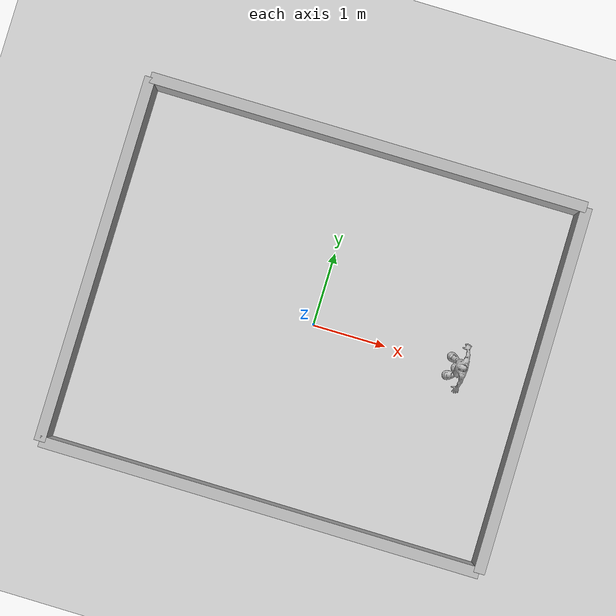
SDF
<sdf version="1.9">
 <world name="default">
  <plugin filename="gz-sim-sensors-system" name="gz::sim::systems::Sensors">
   <render_engine>ogre2</render_engine>
  </plugin>
  <plugin filename="gz-sim-physics-system" name="gz::sim::systems::Physics"/>
  <plugin filename="gz-sim-user-commands-system" name="gz::sim::systems::UserCommands"/>
  <plugin filename="gz-sim-scene-broadcaster-system" name="gz::sim::systems::SceneBroadcaster"/>
  <light name="sun" type="directional">
   <pose>0 0 10 0 0 0</pose>
   <diffuse>0.8 0.8 0.8 1</diffuse>
   <specular>0.2 0.2 0.2 1</specular>
   <direction>-0.5 0.1 -0.9</direction>
  </light>
  <model name="ground_plane">
   <static>1</static>
   <link name="link">
    <collision name="collision">
     <geometry><plane><normal>0 0 1</normal><size>100 100</size></plane></geometry>
    </collision>
    <visual name="visual">
     <geometry><plane><normal>0 0 1</normal><size>100 100</size></plane></geometry>
     <material><ambient>0.8 0.8 0.8 1</ambient><diffuse>0.8 0.8 0.8 1</diffuse></material>
    </visual>
   </link>
  </model>
  <model name="small_room">
   <static>1</static>
   <link name="west_wall">
    <pose>-3 0 0 0 0 0</pose>
    <collision name="collision">
     <geometry><box><size>0.15 5 0.5</size></box></geometry>
     <pose>0 0 0.25 0 0 0</pose>
    </collision>
    <visual name="visual">
     <pose>0 0 0.25 0 0 0</pose>
     <geometry><box><size>0.15 5 0.5</size></box></geometry>
     <material><ambient>0.7 0.7 0.7 1</ambient><diffuse>0.7 0.7 0.7 1</diffuse></material>
    </visual>
   </link>
   <link name="east_wall">
    <pose>3 0 0 0 0 0</pose>
    <collision name="collision">
     <geometry><box><size>0.15 5 0.5</size></box></geometry>
     <pose>0 0 0.25 0 0 0</pose>
    </collision>
    <visual name="visual">
     <pose>0 0 0.25 0 0 0</pose>
     <geometry><box><size>0.15 5 0.5</size></box></geometry>
     <material><ambient>0.7 0.7 0.7 1</ambient><diffuse>0.7 0.7 0.7 1</diffuse></material>
    </visual>
   </link>
   <link name="north_wall">
    <pose>0 2.5 0 0 0 0</pose>
    <collision name="collision">
     <geometry><box><size>6 0.15 0.5</size></box></geometry>
     <pose>0 0 0.25 0 0 0</pose>
    </collision>
    <visual name="visual">
     <pose>0 0 0.25 0 0 0</pose>
     <geometry><box><size>6 0.15 0.5</size></box></geometry>
     <material><ambient>0.7 0.7 0.7 1</ambient><diffuse>0.7 0.7 0.7 1</diffuse></material>
    </visual>
   </link>
   <link name="south_wall">
    <pose>0 -2.5 0 0 0 0</pose>
    <collision name="collision">
     <geometry><box><size>6 0.15 0.5</size></box></geometry>
     <pose>0 0 0.25 0 0 0</pose>
    </collision>
    <visual name="visual">
     <pose>0 0 0.25 0 0 0</pose>
     <geometry><box><size>6 0.15 0.5</size></box></geometry>
     <material><ambient>0.7 0.7 0.7 1</ambient><diffuse>0.7 0.7 0.7 1</diffuse></material>
    </visual>
   </link>
  </model>
  <model name="lebron">
   <pose>2 0 0 1.5708 0 -1.5708</pose>
   <static>true</static>
   <link name="link">
    <visual name="visual">
     <geometry><mesh><uri>model://lebron/lebron.obj</uri><scale>0.5 0.5 0.5</scale></mesh></geometry>
    </visual>
    <collision name="collision"><geometry><mesh><uri>model://lebron/lebron.obj</uri></mesh></geometry></collision>
   </link>
  </model>
  <gravity>0 0 -9.8</gravity>
  <physics name="default_physics" type="ode">
   <max_step_size>0.001</max_step_size>
   <real_time_factor>1</real_time_factor>
   <real_time_update_rate>1000</real_time_update_rate>
  </physics>
  <scene><ambient>0.4 0.4 0.4 1</ambient><background>0.7 0.7 0.7 1</background><shadows>1</shadows></scene>
 </world>
</sdf>
